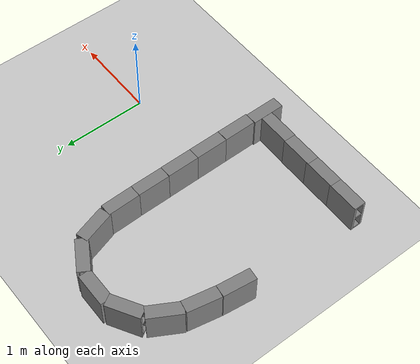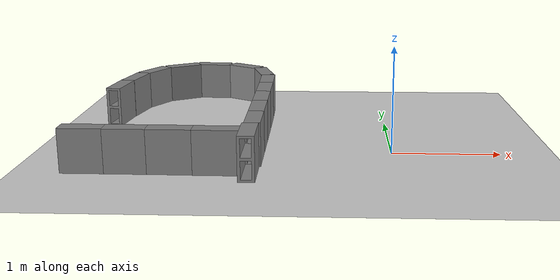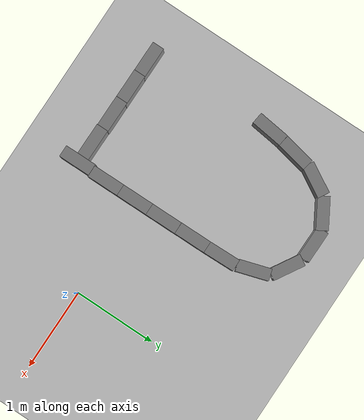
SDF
<sdf version="1.6">
 <world name="default">
  <model name="ground_plane">
   <static>1</static>
   <link name="link">
    <collision name="collision">
     <geometry><plane><normal>0 0 1</normal><size>100 100</size></plane></geometry>
     <surface>
      <contact><collide_bitmask>65535</collide_bitmask></contact>
      <friction><ode><mu>100</mu><mu2>50</mu2></ode></friction>
     </surface>
    </collision>
    <visual name="visual">
     <cast_shadows>0</cast_shadows>
     <geometry><plane><normal>0 0 1</normal><size>100 100</size></plane></geometry>
     <material>
      <script><uri>file://media/materials/scripts/gazebo.material</uri><name>Gazebo/Grey</name></script>
     </material>
    </visual>
   </link>
  </model>
  <model name="cinder_block_wide">
   <link name="link">
    <inertial>
     <pose>0 0 0.071438 0 -0 0</pose>
     <mass>5</mass>
     <inertia>
      <ixx>0.0681466</ixx>
      <ixy>0</ixy>
      <iyy>0.0681466</iyy>
      <ixz>0</ixz>
      <iyz>0</iyz>
      <izz>0.124808</izz>
     </inertia>
    </inertial>
    <visual name="visual">
     <geometry><mesh><uri>model://cinder_block_wide/meshes/cinder_block_wide.dae</uri></mesh></geometry>
    </visual>
    <collision name="top">
     <pose>0 0 0.130175 0 -0 0</pose>
     <geometry><box><size>0.387354 0.387354 0.0254</size></box></geometry>
     <surface>
      <contact><ode><max_vel>0.1</max_vel><min_depth>0.001</min_depth></ode></contact>
      <friction><ode><mu>1</mu><mu2>1</mu2></ode></friction>
     </surface>
    </collision>
    <collision name="bottom">
     <pose>0 0 0.0127 0 -0 0</pose>
     <geometry><box><size>0.387354 0.387354 0.0254</size></box></geometry>
     <surface>
      <contact><ode><max_vel>0.1</max_vel><min_depth>0.001</min_depth></ode></contact>
      <friction><ode><mu>1</mu><mu2>1</mu2></ode></friction>
     </surface>
    </collision>
    <collision name="left">
     <pose>0 -0.183355 0.071438 0 -0 0</pose>
     <geometry><box><size>0.387354 0.020643 0.092075</size></box></geometry>
     <surface>
      <contact><ode><max_vel>0.1</max_vel><min_depth>0.001</min_depth></ode></contact>
      <friction><ode><mu>1</mu><mu2>1</mu2></ode></friction>
     </surface>
    </collision>
    <collision name="right">
     <pose>0 0.183355 0.071438 0 -0 0</pose>
     <geometry><box><size>0.387354 0.020643 0.092075</size></box></geometry>
     <surface>
      <contact><ode><max_vel>0.1</max_vel><min_depth>0.001</min_depth></ode></contact>
      <friction><ode><mu>1</mu><mu2>1</mu2></ode></friction>
     </surface>
    </collision>
    <collision name="middle">
     <pose>0 0 0.071438 0 -0 0</pose>
     <geometry><box><size>0.387354 0.0254 0.092075</size></box></geometry>
     <surface>
      <contact><ode><max_vel>0.1</max_vel><min_depth>0.001</min_depth></ode></contact>
      <friction><ode><mu>1</mu><mu2>1</mu2></ode></friction>
     </surface>
    </collision>
   </link>
   <pose>-1.5034 -0.852041 0.263357 -1.56869 0 -0.003839</pose>
  </model>
  <model name="cinder_block_wide_clone">
   <link name="link">
    <inertial>
     <pose>0 0 0.071438 0 -0 0</pose>
     <mass>5</mass>
     <inertia>
      <ixx>0.0681466</ixx>
      <ixy>0</ixy>
      <iyy>0.0681466</iyy>
      <ixz>0</ixz>
      <iyz>0</iyz>
      <izz>0.124808</izz>
     </inertia>
    </inertial>
    <visual name="visual">
     <geometry><mesh><uri>model://cinder_block_wide/meshes/cinder_block_wide.dae</uri></mesh></geometry>
    </visual>
    <collision name="top">
     <pose>0 0 0.130175 0 -0 0</pose>
     <geometry><box><size>0.387354 0.387354 0.0254</size></box></geometry>
     <surface>
      <contact><ode><max_vel>0.1</max_vel><min_depth>0.001</min_depth></ode></contact>
      <friction><ode><mu>1</mu><mu2>1</mu2></ode></friction>
     </surface>
    </collision>
    <collision name="bottom">
     <pose>0 0 0.0127 0 -0 0</pose>
     <geometry><box><size>0.387354 0.387354 0.0254</size></box></geometry>
     <surface>
      <contact><ode><max_vel>0.1</max_vel><min_depth>0.001</min_depth></ode></contact>
      <friction><ode><mu>1</mu><mu2>1</mu2></ode></friction>
     </surface>
    </collision>
    <collision name="left">
     <pose>0 -0.183355 0.071438 0 -0 0</pose>
     <geometry><box><size>0.387354 0.020643 0.092075</size></box></geometry>
     <surface>
      <contact><ode><max_vel>0.1</max_vel><min_depth>0.001</min_depth></ode></contact>
      <friction><ode><mu>1</mu><mu2>1</mu2></ode></friction>
     </surface>
    </collision>
    <collision name="right">
     <pose>0 0.183355 0.071438 0 -0 0</pose>
     <geometry><box><size>0.387354 0.020643 0.092075</size></box></geometry>
     <surface>
      <contact><ode><max_vel>0.1</max_vel><min_depth>0.001</min_depth></ode></contact>
      <friction><ode><mu>1</mu><mu2>1</mu2></ode></friction>
     </surface>
    </collision>
    <collision name="middle">
     <pose>0 0 0.071438 0 -0 0</pose>
     <geometry><box><size>0.387354 0.0254 0.092075</size></box></geometry>
     <surface>
      <contact><ode><max_vel>0.1</max_vel><min_depth>0.001</min_depth></ode></contact>
      <friction><ode><mu>1</mu><mu2>1</mu2></ode></friction>
     </surface>
    </collision>
   </link>
   <pose>-1.88278 -0.845078 0.263357 -1.56869 0 -0.003839</pose>
  </model>
  <model name="cinder_block_wide_clone_0">
   <link name="link">
    <inertial>
     <pose>0 0 0.071438 0 -0 0</pose>
     <mass>5</mass>
     <inertia>
      <ixx>0.0681466</ixx>
      <ixy>0</ixy>
      <iyy>0.0681466</iyy>
      <ixz>0</ixz>
      <iyz>0</iyz>
      <izz>0.124808</izz>
     </inertia>
    </inertial>
    <visual name="visual">
     <geometry><mesh><uri>model://cinder_block_wide/meshes/cinder_block_wide.dae</uri></mesh></geometry>
    </visual>
    <collision name="top">
     <pose>0 0 0.130175 0 -0 0</pose>
     <geometry><box><size>0.387354 0.387354 0.0254</size></box></geometry>
     <surface>
      <contact><ode><max_vel>0.1</max_vel><min_depth>0.001</min_depth></ode></contact>
      <friction><ode><mu>1</mu><mu2>1</mu2></ode></friction>
     </surface>
    </collision>
    <collision name="bottom">
     <pose>0 0 0.0127 0 -0 0</pose>
     <geometry><box><size>0.387354 0.387354 0.0254</size></box></geometry>
     <surface>
      <contact><ode><max_vel>0.1</max_vel><min_depth>0.001</min_depth></ode></contact>
      <friction><ode><mu>1</mu><mu2>1</mu2></ode></friction>
     </surface>
    </collision>
    <collision name="left">
     <pose>0 -0.183355 0.071438 0 -0 0</pose>
     <geometry><box><size>0.387354 0.020643 0.092075</size></box></geometry>
     <surface>
      <contact><ode><max_vel>0.1</max_vel><min_depth>0.001</min_depth></ode></contact>
      <friction><ode><mu>1</mu><mu2>1</mu2></ode></friction>
     </surface>
    </collision>
    <collision name="right">
     <pose>0 0.183355 0.071438 0 -0 0</pose>
     <geometry><box><size>0.387354 0.020643 0.092075</size></box></geometry>
     <surface>
      <contact><ode><max_vel>0.1</max_vel><min_depth>0.001</min_depth></ode></contact>
      <friction><ode><mu>1</mu><mu2>1</mu2></ode></friction>
     </surface>
    </collision>
    <collision name="middle">
     <pose>0 0 0.071438 0 -0 0</pose>
     <geometry><box><size>0.387354 0.0254 0.092075</size></box></geometry>
     <surface>
      <contact><ode><max_vel>0.1</max_vel><min_depth>0.001</min_depth></ode></contact>
      <friction><ode><mu>1</mu><mu2>1</mu2></ode></friction>
     </surface>
    </collision>
   </link>
   <pose>-2.24071 -0.843014 0.263357 -1.56869 0 -0.003839</pose>
  </model>
  <model name="cinder_block_wide_clone_1">
   <link name="link">
    <inertial>
     <pose>0 0 0.071438 0 -0 0</pose>
     <mass>5</mass>
     <inertia>
      <ixx>0.0681466</ixx>
      <ixy>0</ixy>
      <iyy>0.0681466</iyy>
      <ixz>0</ixz>
      <iyz>0</iyz>
      <izz>0.124808</izz>
     </inertia>
    </inertial>
    <visual name="visual">
     <geometry><mesh><uri>model://cinder_block_wide/meshes/cinder_block_wide.dae</uri></mesh></geometry>
    </visual>
    <collision name="top">
     <pose>0 0 0.130175 0 -0 0</pose>
     <geometry><box><size>0.387354 0.387354 0.0254</size></box></geometry>
     <surface>
      <contact><ode><max_vel>0.1</max_vel><min_depth>0.001</min_depth></ode></contact>
      <friction><ode><mu>1</mu><mu2>1</mu2></ode></friction>
     </surface>
    </collision>
    <collision name="bottom">
     <pose>0 0 0.0127 0 -0 0</pose>
     <geometry><box><size>0.387354 0.387354 0.0254</size></box></geometry>
     <surface>
      <contact><ode><max_vel>0.1</max_vel><min_depth>0.001</min_depth></ode></contact>
      <friction><ode><mu>1</mu><mu2>1</mu2></ode></friction>
     </surface>
    </collision>
    <collision name="left">
     <pose>0 -0.183355 0.071438 0 -0 0</pose>
     <geometry><box><size>0.387354 0.020643 0.092075</size></box></geometry>
     <surface>
      <contact><ode><max_vel>0.1</max_vel><min_depth>0.001</min_depth></ode></contact>
      <friction><ode><mu>1</mu><mu2>1</mu2></ode></friction>
     </surface>
    </collision>
    <collision name="right">
     <pose>0 0.183355 0.071438 0 -0 0</pose>
     <geometry><box><size>0.387354 0.020643 0.092075</size></box></geometry>
     <surface>
      <contact><ode><max_vel>0.1</max_vel><min_depth>0.001</min_depth></ode></contact>
      <friction><ode><mu>1</mu><mu2>1</mu2></ode></friction>
     </surface>
    </collision>
    <collision name="middle">
     <pose>0 0 0.071438 0 -0 0</pose>
     <geometry><box><size>0.387354 0.0254 0.092075</size></box></geometry>
     <surface>
      <contact><ode><max_vel>0.1</max_vel><min_depth>0.001</min_depth></ode></contact>
      <friction><ode><mu>1</mu><mu2>1</mu2></ode></friction>
     </surface>
    </collision>
   </link>
   <pose>-2.61163 -0.840837 0.263357 -1.56869 0 -0.003839</pose>
  </model>
  <model name="cinder_block_wide_clone_6_clone_1_clone_2">
   <link name="link">
    <inertial>
     <pose>0 0 0.071438 0 -0 0</pose>
     <mass>5</mass>
     <inertia>
      <ixx>0.0681466</ixx>
      <ixy>0</ixy>
      <iyy>0.0681466</iyy>
      <ixz>0</ixz>
      <iyz>0</iyz>
      <izz>0.124808</izz>
     </inertia>
    </inertial>
    <visual name="visual">
     <geometry><mesh><uri>model://cinder_block_wide/meshes/cinder_block_wide.dae</uri></mesh></geometry>
    </visual>
    <collision name="top">
     <pose>0 0 0.130175 0 -0 0</pose>
     <geometry><box><size>0.387354 0.387354 0.0254</size></box></geometry>
     <surface>
      <contact><ode><max_vel>0.1</max_vel><min_depth>0.001</min_depth></ode></contact>
      <friction><ode><mu>1</mu><mu2>1</mu2></ode></friction>
     </surface>
    </collision>
    <collision name="bottom">
     <pose>0 0 0.0127 0 -0 0</pose>
     <geometry><box><size>0.387354 0.387354 0.0254</size></box></geometry>
     <surface>
      <contact><ode><max_vel>0.1</max_vel><min_depth>0.001</min_depth></ode></contact>
      <friction><ode><mu>1</mu><mu2>1</mu2></ode></friction>
     </surface>
    </collision>
    <collision name="left">
     <pose>0 -0.183355 0.071438 0 -0 0</pose>
     <geometry><box><size>0.387354 0.020643 0.092075</size></box></geometry>
     <surface>
      <contact><ode><max_vel>0.1</max_vel><min_depth>0.001</min_depth></ode></contact>
      <friction><ode><mu>1</mu><mu2>1</mu2></ode></friction>
     </surface>
    </collision>
    <collision name="right">
     <pose>0 0.183355 0.071438 0 -0 0</pose>
     <geometry><box><size>0.387354 0.020643 0.092075</size></box></geometry>
     <surface>
      <contact><ode><max_vel>0.1</max_vel><min_depth>0.001</min_depth></ode></contact>
      <friction><ode><mu>1</mu><mu2>1</mu2></ode></friction>
     </surface>
    </collision>
    <collision name="middle">
     <pose>0 0 0.071438 0 -0 0</pose>
     <geometry><box><size>0.387354 0.0254 0.092075</size></box></geometry>
     <surface>
      <contact><ode><max_vel>0.1</max_vel><min_depth>0.001</min_depth></ode></contact>
      <friction><ode><mu>1</mu><mu2>1</mu2></ode></friction>
     </surface>
    </collision>
   </link>
   <pose>-2.78719 0.796744 0.263357 -1.57105 0.00209 -1.6971</pose>
  </model>
  <model name="cinder_block_wide_clone_6_clone_1_clone_clone">
   <link name="link">
    <inertial>
     <pose>0 0 0.071438 0 -0 0</pose>
     <mass>5</mass>
     <inertia>
      <ixx>0.0681466</ixx>
      <ixy>0</ixy>
      <iyy>0.0681466</iyy>
      <ixz>0</ixz>
      <iyz>0</iyz>
      <izz>0.124808</izz>
     </inertia>
    </inertial>
    <visual name="visual">
     <geometry><mesh><uri>model://cinder_block_wide/meshes/cinder_block_wide.dae</uri></mesh></geometry>
    </visual>
    <collision name="top">
     <pose>0 0 0.130175 0 -0 0</pose>
     <geometry><box><size>0.387354 0.387354 0.0254</size></box></geometry>
     <surface>
      <contact><ode><max_vel>0.1</max_vel><min_depth>0.001</min_depth></ode></contact>
      <friction><ode><mu>1</mu><mu2>1</mu2></ode></friction>
     </surface>
    </collision>
    <collision name="bottom">
     <pose>0 0 0.0127 0 -0 0</pose>
     <geometry><box><size>0.387354 0.387354 0.0254</size></box></geometry>
     <surface>
      <contact><ode><max_vel>0.1</max_vel><min_depth>0.001</min_depth></ode></contact>
      <friction><ode><mu>1</mu><mu2>1</mu2></ode></friction>
     </surface>
    </collision>
    <collision name="left">
     <pose>0 -0.183355 0.071438 0 -0 0</pose>
     <geometry><box><size>0.387354 0.020643 0.092075</size></box></geometry>
     <surface>
      <contact><ode><max_vel>0.1</max_vel><min_depth>0.001</min_depth></ode></contact>
      <friction><ode><mu>1</mu><mu2>1</mu2></ode></friction>
     </surface>
    </collision>
    <collision name="right">
     <pose>0 0.183355 0.071438 0 -0 0</pose>
     <geometry><box><size>0.387354 0.020643 0.092075</size></box></geometry>
     <surface>
      <contact><ode><max_vel>0.1</max_vel><min_depth>0.001</min_depth></ode></contact>
      <friction><ode><mu>1</mu><mu2>1</mu2></ode></friction>
     </surface>
    </collision>
    <collision name="middle">
     <pose>0 0 0.071438 0 -0 0</pose>
     <geometry><box><size>0.387354 0.0254 0.092075</size></box></geometry>
     <surface>
      <contact><ode><max_vel>0.1</max_vel><min_depth>0.001</min_depth></ode></contact>
      <friction><ode><mu>1</mu><mu2>1</mu2></ode></friction>
     </surface>
    </collision>
   </link>
   <pose>-2.72229 1.18397 0.263357 -1.5712 0.002065 -1.77123</pose>
  </model>
  <model name="cinder_block_wide_clone_6_clone_1_clone_0_clone">
   <link name="link">
    <inertial>
     <pose>0 0 0.071438 0 -0 0</pose>
     <mass>5</mass>
     <inertia>
      <ixx>0.0681466</ixx>
      <ixy>0</ixy>
      <iyy>0.0681466</iyy>
      <ixz>0</ixz>
      <iyz>0</iyz>
      <izz>0.124808</izz>
     </inertia>
    </inertial>
    <visual name="visual">
     <geometry><mesh><uri>model://cinder_block_wide/meshes/cinder_block_wide.dae</uri></mesh></geometry>
    </visual>
    <collision name="top">
     <pose>0 0 0.130175 0 -0 0</pose>
     <geometry><box><size>0.387354 0.387354 0.0254</size></box></geometry>
     <surface>
      <contact><ode><max_vel>0.1</max_vel><min_depth>0.001</min_depth></ode></contact>
      <friction><ode><mu>1</mu><mu2>1</mu2></ode></friction>
     </surface>
    </collision>
    <collision name="bottom">
     <pose>0 0 0.0127 0 -0 0</pose>
     <geometry><box><size>0.387354 0.387354 0.0254</size></box></geometry>
     <surface>
      <contact><ode><max_vel>0.1</max_vel><min_depth>0.001</min_depth></ode></contact>
      <friction><ode><mu>1</mu><mu2>1</mu2></ode></friction>
     </surface>
    </collision>
    <collision name="left">
     <pose>0 -0.183355 0.071438 0 -0 0</pose>
     <geometry><box><size>0.387354 0.020643 0.092075</size></box></geometry>
     <surface>
      <contact><ode><max_vel>0.1</max_vel><min_depth>0.001</min_depth></ode></contact>
      <friction><ode><mu>1</mu><mu2>1</mu2></ode></friction>
     </surface>
    </collision>
    <collision name="right">
     <pose>0 0.183355 0.071438 0 -0 0</pose>
     <geometry><box><size>0.387354 0.020643 0.092075</size></box></geometry>
     <surface>
      <contact><ode><max_vel>0.1</max_vel><min_depth>0.001</min_depth></ode></contact>
      <friction><ode><mu>1</mu><mu2>1</mu2></ode></friction>
     </surface>
    </collision>
    <collision name="middle">
     <pose>0 0 0.071438 0 -0 0</pose>
     <geometry><box><size>0.387354 0.0254 0.092075</size></box></geometry>
     <surface>
      <contact><ode><max_vel>0.1</max_vel><min_depth>0.001</min_depth></ode></contact>
      <friction><ode><mu>1</mu><mu2>1</mu2></ode></friction>
     </surface>
    </collision>
   </link>
   <pose>-2.58887 1.55701 0.263357 -1.57183 0.001834 -2.08968</pose>
  </model>
  <model name="cinder_block_wide_clone_6_clone_1_clone_1_clone_0">
   <link name="link">
    <inertial>
     <pose>0 0 0.071438 0 -0 0</pose>
     <mass>5</mass>
     <inertia>
      <ixx>0.0681466</ixx>
      <ixy>0</ixy>
      <iyy>0.0681466</iyy>
      <ixz>0</ixz>
      <iyz>0</iyz>
      <izz>0.124808</izz>
     </inertia>
    </inertial>
    <visual name="visual">
     <geometry><mesh><uri>model://cinder_block_wide/meshes/cinder_block_wide.dae</uri></mesh></geometry>
    </visual>
    <collision name="top">
     <pose>0 0 0.130175 0 -0 0</pose>
     <geometry><box><size>0.387354 0.387354 0.0254</size></box></geometry>
     <surface>
      <contact><ode><max_vel>0.1</max_vel><min_depth>0.001</min_depth></ode></contact>
      <friction><ode><mu>1</mu><mu2>1</mu2></ode></friction>
     </surface>
    </collision>
    <collision name="bottom">
     <pose>0 0 0.0127 0 -0 0</pose>
     <geometry><box><size>0.387354 0.387354 0.0254</size></box></geometry>
     <surface>
      <contact><ode><max_vel>0.1</max_vel><min_depth>0.001</min_depth></ode></contact>
      <friction><ode><mu>1</mu><mu2>1</mu2></ode></friction>
     </surface>
    </collision>
    <collision name="left">
     <pose>0 -0.183355 0.071438 0 -0 0</pose>
     <geometry><box><size>0.387354 0.020643 0.092075</size></box></geometry>
     <surface>
      <contact><ode><max_vel>0.1</max_vel><min_depth>0.001</min_depth></ode></contact>
      <friction><ode><mu>1</mu><mu2>1</mu2></ode></friction>
     </surface>
    </collision>
    <collision name="right">
     <pose>0 0.183355 0.071438 0 -0 0</pose>
     <geometry><box><size>0.387354 0.020643 0.092075</size></box></geometry>
     <surface>
      <contact><ode><max_vel>0.1</max_vel><min_depth>0.001</min_depth></ode></contact>
      <friction><ode><mu>1</mu><mu2>1</mu2></ode></friction>
     </surface>
    </collision>
    <collision name="middle">
     <pose>0 0 0.071438 0 -0 0</pose>
     <geometry><box><size>0.387354 0.0254 0.092075</size></box></geometry>
     <surface>
      <contact><ode><max_vel>0.1</max_vel><min_depth>0.001</min_depth></ode></contact>
      <friction><ode><mu>1</mu><mu2>1</mu2></ode></friction>
     </surface>
    </collision>
   </link>
   <pose>-2.29641 1.85571 0.263357 -1.57261 0.001075 -2.61103</pose>
  </model>
  <model name="cinder_block_wide_clone_6_clone_1_clone_1_clone_clone_0">
   <link name="link">
    <inertial>
     <pose>0 0 0.071438 0 -0 0</pose>
     <mass>5</mass>
     <inertia>
      <ixx>0.0681466</ixx>
      <ixy>0</ixy>
      <iyy>0.0681466</iyy>
      <ixz>0</ixz>
      <iyz>0</iyz>
      <izz>0.124808</izz>
     </inertia>
    </inertial>
    <visual name="visual">
     <geometry><mesh><uri>model://cinder_block_wide/meshes/cinder_block_wide.dae</uri></mesh></geometry>
    </visual>
    <collision name="top">
     <pose>0 0 0.130175 0 -0 0</pose>
     <geometry><box><size>0.387354 0.387354 0.0254</size></box></geometry>
     <surface>
      <contact><ode><max_vel>0.1</max_vel><min_depth>0.001</min_depth></ode></contact>
      <friction><ode><mu>1</mu><mu2>1</mu2></ode></friction>
     </surface>
    </collision>
    <collision name="bottom">
     <pose>0 0 0.0127 0 -0 0</pose>
     <geometry><box><size>0.387354 0.387354 0.0254</size></box></geometry>
     <surface>
      <contact><ode><max_vel>0.1</max_vel><min_depth>0.001</min_depth></ode></contact>
      <friction><ode><mu>1</mu><mu2>1</mu2></ode></friction>
     </surface>
    </collision>
    <collision name="left">
     <pose>0 -0.183355 0.071438 0 -0 0</pose>
     <geometry><box><size>0.387354 0.020643 0.092075</size></box></geometry>
     <surface>
      <contact><ode><max_vel>0.1</max_vel><min_depth>0.001</min_depth></ode></contact>
      <friction><ode><mu>1</mu><mu2>1</mu2></ode></friction>
     </surface>
    </collision>
    <collision name="right">
     <pose>0 0.183355 0.071438 0 -0 0</pose>
     <geometry><box><size>0.387354 0.020643 0.092075</size></box></geometry>
     <surface>
      <contact><ode><max_vel>0.1</max_vel><min_depth>0.001</min_depth></ode></contact>
      <friction><ode><mu>1</mu><mu2>1</mu2></ode></friction>
     </surface>
    </collision>
    <collision name="middle">
     <pose>0 0 0.071438 0 -0 0</pose>
     <geometry><box><size>0.387354 0.0254 0.092075</size></box></geometry>
     <surface>
      <contact><ode><max_vel>0.1</max_vel><min_depth>0.001</min_depth></ode></contact>
      <friction><ode><mu>1</mu><mu2>1</mu2></ode></friction>
     </surface>
    </collision>
   </link>
   <pose>-1.91162 1.96772 0.263357 -1.5729 -3e-06 3.13368</pose>
  </model>
  <model name="cinder_block_wide_clone_6_clone_1_clone_1_clone_clone_clone_1">
   <link name="link">
    <inertial>
     <pose>0 0 0.071438 0 -0 0</pose>
     <mass>5</mass>
     <inertia>
      <ixx>0.0681466</ixx>
      <ixy>0</ixy>
      <iyy>0.0681466</iyy>
      <ixz>0</ixz>
      <iyz>0</iyz>
      <izz>0.124808</izz>
     </inertia>
    </inertial>
    <visual name="visual">
     <geometry><mesh><uri>model://cinder_block_wide/meshes/cinder_block_wide.dae</uri></mesh></geometry>
    </visual>
    <collision name="top">
     <pose>0 0 0.130175 0 -0 0</pose>
     <geometry><box><size>0.387354 0.387354 0.0254</size></box></geometry>
     <surface>
      <contact><ode><max_vel>0.1</max_vel><min_depth>0.001</min_depth></ode></contact>
      <friction><ode><mu>1</mu><mu2>1</mu2></ode></friction>
     </surface>
    </collision>
    <collision name="bottom">
     <pose>0 0 0.0127 0 -0 0</pose>
     <geometry><box><size>0.387354 0.387354 0.0254</size></box></geometry>
     <surface>
      <contact><ode><max_vel>0.1</max_vel><min_depth>0.001</min_depth></ode></contact>
      <friction><ode><mu>1</mu><mu2>1</mu2></ode></friction>
     </surface>
    </collision>
    <collision name="left">
     <pose>0 -0.183355 0.071438 0 -0 0</pose>
     <geometry><box><size>0.387354 0.020643 0.092075</size></box></geometry>
     <surface>
      <contact><ode><max_vel>0.1</max_vel><min_depth>0.001</min_depth></ode></contact>
      <friction><ode><mu>1</mu><mu2>1</mu2></ode></friction>
     </surface>
    </collision>
    <collision name="right">
     <pose>0 0.183355 0.071438 0 -0 0</pose>
     <geometry><box><size>0.387354 0.020643 0.092075</size></box></geometry>
     <surface>
      <contact><ode><max_vel>0.1</max_vel><min_depth>0.001</min_depth></ode></contact>
      <friction><ode><mu>1</mu><mu2>1</mu2></ode></friction>
     </surface>
    </collision>
    <collision name="middle">
     <pose>0 0 0.071438 0 -0 0</pose>
     <geometry><box><size>0.387354 0.0254 0.092075</size></box></geometry>
     <surface>
      <contact><ode><max_vel>0.1</max_vel><min_depth>0.001</min_depth></ode></contact>
      <friction><ode><mu>1</mu><mu2>1</mu2></ode></friction>
     </surface>
    </collision>
   </link>
   <pose>-1.49863 1.85316 0.263357 -1.57261 -0.001068 2.60293</pose>
  </model>
  <model name="cinder_block_wide_clone_6_clone_1_clone_1_clone_clone_clone_clone">
   <link name="link">
    <inertial>
     <pose>0 0 0.071438 0 -0 0</pose>
     <mass>5</mass>
     <inertia>
      <ixx>0.0681466</ixx>
      <ixy>0</ixy>
      <iyy>0.0681466</iyy>
      <ixz>0</ixz>
      <iyz>0</iyz>
      <izz>0.124808</izz>
     </inertia>
    </inertial>
    <visual name="visual">
     <geometry><mesh><uri>model://cinder_block_wide/meshes/cinder_block_wide.dae</uri></mesh></geometry>
    </visual>
    <collision name="top">
     <pose>0 0 0.130175 0 -0 0</pose>
     <geometry><box><size>0.387354 0.387354 0.0254</size></box></geometry>
     <surface>
      <contact><ode><max_vel>0.1</max_vel><min_depth>0.001</min_depth></ode></contact>
      <friction><ode><mu>1</mu><mu2>1</mu2></ode></friction>
     </surface>
    </collision>
    <collision name="bottom">
     <pose>0 0 0.0127 0 -0 0</pose>
     <geometry><box><size>0.387354 0.387354 0.0254</size></box></geometry>
     <surface>
      <contact><ode><max_vel>0.1</max_vel><min_depth>0.001</min_depth></ode></contact>
      <friction><ode><mu>1</mu><mu2>1</mu2></ode></friction>
     </surface>
    </collision>
    <collision name="left">
     <pose>0 -0.183355 0.071438 0 -0 0</pose>
     <geometry><box><size>0.387354 0.020643 0.092075</size></box></geometry>
     <surface>
      <contact><ode><max_vel>0.1</max_vel><min_depth>0.001</min_depth></ode></contact>
      <friction><ode><mu>1</mu><mu2>1</mu2></ode></friction>
     </surface>
    </collision>
    <collision name="right">
     <pose>0 0.183355 0.071438 0 -0 0</pose>
     <geometry><box><size>0.387354 0.020643 0.092075</size></box></geometry>
     <surface>
      <contact><ode><max_vel>0.1</max_vel><min_depth>0.001</min_depth></ode></contact>
      <friction><ode><mu>1</mu><mu2>1</mu2></ode></friction>
     </surface>
    </collision>
    <collision name="middle">
     <pose>0 0 0.071438 0 -0 0</pose>
     <geometry><box><size>0.387354 0.0254 0.092075</size></box></geometry>
     <surface>
      <contact><ode><max_vel>0.1</max_vel><min_depth>0.001</min_depth></ode></contact>
      <friction><ode><mu>1</mu><mu2>1</mu2></ode></friction>
     </surface>
    </collision>
   </link>
   <pose>-1.23943 1.522 0.263357 -1.57143 -0.002008 1.86807</pose>
  </model>
  <model name="cinder_block_wide_clone_6_clone_1_clone_1_clone_clone_clone_0_clone">
   <link name="link">
    <inertial>
     <pose>0 0 0.071438 0 -0 0</pose>
     <mass>5</mass>
     <inertia>
      <ixx>0.0681466</ixx>
      <ixy>0</ixy>
      <iyy>0.0681466</iyy>
      <ixz>0</ixz>
      <iyz>0</iyz>
      <izz>0.124808</izz>
     </inertia>
    </inertial>
    <visual name="visual">
     <geometry><mesh><uri>model://cinder_block_wide/meshes/cinder_block_wide.dae</uri></mesh></geometry>
    </visual>
    <collision name="top">
     <pose>0 0 0.130175 0 -0 0</pose>
     <geometry><box><size>0.387354 0.387354 0.0254</size></box></geometry>
     <surface>
      <contact><ode><max_vel>0.1</max_vel><min_depth>0.001</min_depth></ode></contact>
      <friction><ode><mu>1</mu><mu2>1</mu2></ode></friction>
     </surface>
    </collision>
    <collision name="bottom">
     <pose>0 0 0.0127 0 -0 0</pose>
     <geometry><box><size>0.387354 0.387354 0.0254</size></box></geometry>
     <surface>
      <contact><ode><max_vel>0.1</max_vel><min_depth>0.001</min_depth></ode></contact>
      <friction><ode><mu>1</mu><mu2>1</mu2></ode></friction>
     </surface>
    </collision>
    <collision name="left">
     <pose>0 -0.183355 0.071438 0 -0 0</pose>
     <geometry><box><size>0.387354 0.020643 0.092075</size></box></geometry>
     <surface>
      <contact><ode><max_vel>0.1</max_vel><min_depth>0.001</min_depth></ode></contact>
      <friction><ode><mu>1</mu><mu2>1</mu2></ode></friction>
     </surface>
    </collision>
    <collision name="right">
     <pose>0 0.183355 0.071438 0 -0 0</pose>
     <geometry><box><size>0.387354 0.020643 0.092075</size></box></geometry>
     <surface>
      <contact><ode><max_vel>0.1</max_vel><min_depth>0.001</min_depth></ode></contact>
      <friction><ode><mu>1</mu><mu2>1</mu2></ode></friction>
     </surface>
    </collision>
    <collision name="middle">
     <pose>0 0 0.071438 0 -0 0</pose>
     <geometry><box><size>0.387354 0.0254 0.092075</size></box></geometry>
     <surface>
      <contact><ode><max_vel>0.1</max_vel><min_depth>0.001</min_depth></ode></contact>
      <friction><ode><mu>1</mu><mu2>1</mu2></ode></friction>
     </surface>
    </collision>
   </link>
   <pose>-1.16545 1.1201 0.263357 -1.57086 -0.002104 1.59329</pose>
  </model>
  <model name="cinder_block_wide_clone_6_clone_2_clone_0">
   <link name="link">
    <inertial>
     <pose>0 0 0.071438 0 -0 0</pose>
     <mass>5</mass>
     <inertia>
      <ixx>0.0681466</ixx>
      <ixy>0</ixy>
      <iyy>0.0681466</iyy>
      <ixz>0</ixz>
      <iyz>0</iyz>
      <izz>0.124808</izz>
     </inertia>
    </inertial>
    <visual name="visual">
     <geometry><mesh><uri>model://cinder_block_wide/meshes/cinder_block_wide.dae</uri></mesh></geometry>
    </visual>
    <collision name="top">
     <pose>0 0 0.130175 0 -0 0</pose>
     <geometry><box><size>0.387354 0.387354 0.0254</size></box></geometry>
     <surface>
      <contact><ode><max_vel>0.1</max_vel><min_depth>0.001</min_depth></ode></contact>
      <friction><ode><mu>1</mu><mu2>1</mu2></ode></friction>
     </surface>
    </collision>
    <collision name="bottom">
     <pose>0 0 0.0127 0 -0 0</pose>
     <geometry><box><size>0.387354 0.387354 0.0254</size></box></geometry>
     <surface>
      <contact><ode><max_vel>0.1</max_vel><min_depth>0.001</min_depth></ode></contact>
      <friction><ode><mu>1</mu><mu2>1</mu2></ode></friction>
     </surface>
    </collision>
    <collision name="left">
     <pose>0 -0.183355 0.071438 0 -0 0</pose>
     <geometry><box><size>0.387354 0.020643 0.092075</size></box></geometry>
     <surface>
      <contact><ode><max_vel>0.1</max_vel><min_depth>0.001</min_depth></ode></contact>
      <friction><ode><mu>1</mu><mu2>1</mu2></ode></friction>
     </surface>
    </collision>
    <collision name="right">
     <pose>0 0.183355 0.071438 0 -0 0</pose>
     <geometry><box><size>0.387354 0.020643 0.092075</size></box></geometry>
     <surface>
      <contact><ode><max_vel>0.1</max_vel><min_depth>0.001</min_depth></ode></contact>
      <friction><ode><mu>1</mu><mu2>1</mu2></ode></friction>
     </surface>
    </collision>
    <collision name="middle">
     <pose>0 0 0.071438 0 -0 0</pose>
     <geometry><box><size>0.387354 0.0254 0.092075</size></box></geometry>
     <surface>
      <contact><ode><max_vel>0.1</max_vel><min_depth>0.001</min_depth></ode></contact>
      <friction><ode><mu>1</mu><mu2>1</mu2></ode></friction>
     </surface>
    </collision>
   </link>
   <pose>-1.30302 0.736682 0.263357 -1.57078 0.002106 -1.56659</pose>
  </model>
  <model name="cinder_block_wide_clone_6_clone_2_clone_0_clone">
   <link name="link">
    <inertial>
     <pose>0 0 0.071438 0 -0 0</pose>
     <mass>5</mass>
     <inertia>
      <ixx>0.0681466</ixx>
      <ixy>0</ixy>
      <iyy>0.0681466</iyy>
      <ixz>0</ixz>
      <iyz>0</iyz>
      <izz>0.124808</izz>
     </inertia>
    </inertial>
    <visual name="visual">
     <geometry><mesh><uri>model://cinder_block_wide/meshes/cinder_block_wide.dae</uri></mesh></geometry>
    </visual>
    <collision name="top">
     <pose>0 0 0.130175 0 -0 0</pose>
     <geometry><box><size>0.387354 0.387354 0.0254</size></box></geometry>
     <surface>
      <contact><ode><max_vel>0.1</max_vel><min_depth>0.001</min_depth></ode></contact>
      <friction><ode><mu>1</mu><mu2>1</mu2></ode></friction>
     </surface>
    </collision>
    <collision name="bottom">
     <pose>0 0 0.0127 0 -0 0</pose>
     <geometry><box><size>0.387354 0.387354 0.0254</size></box></geometry>
     <surface>
      <contact><ode><max_vel>0.1</max_vel><min_depth>0.001</min_depth></ode></contact>
      <friction><ode><mu>1</mu><mu2>1</mu2></ode></friction>
     </surface>
    </collision>
    <collision name="left">
     <pose>0 -0.183355 0.071438 0 -0 0</pose>
     <geometry><box><size>0.387354 0.020643 0.092075</size></box></geometry>
     <surface>
      <contact><ode><max_vel>0.1</max_vel><min_depth>0.001</min_depth></ode></contact>
      <friction><ode><mu>1</mu><mu2>1</mu2></ode></friction>
     </surface>
    </collision>
    <collision name="right">
     <pose>0 0.183355 0.071438 0 -0 0</pose>
     <geometry><box><size>0.387354 0.020643 0.092075</size></box></geometry>
     <surface>
      <contact><ode><max_vel>0.1</max_vel><min_depth>0.001</min_depth></ode></contact>
      <friction><ode><mu>1</mu><mu2>1</mu2></ode></friction>
     </surface>
    </collision>
    <collision name="middle">
     <pose>0 0 0.071438 0 -0 0</pose>
     <geometry><box><size>0.387354 0.0254 0.092075</size></box></geometry>
     <surface>
      <contact><ode><max_vel>0.1</max_vel><min_depth>0.001</min_depth></ode></contact>
      <friction><ode><mu>1</mu><mu2>1</mu2></ode></friction>
     </surface>
    </collision>
   </link>
   <pose>-1.30022 0.348747 0.263357 -1.57078 0.002106 -1.56659</pose>
  </model>
  <model name="cinder_block_wide_clone_6_clone_2_clone_0_clone_0">
   <link name="link">
    <inertial>
     <pose>0 0 0.071438 0 -0 0</pose>
     <mass>5</mass>
     <inertia>
      <ixx>0.0681466</ixx>
      <ixy>0</ixy>
      <iyy>0.0681466</iyy>
      <ixz>0</ixz>
      <iyz>0</iyz>
      <izz>0.124808</izz>
     </inertia>
    </inertial>
    <visual name="visual">
     <geometry><mesh><uri>model://cinder_block_wide/meshes/cinder_block_wide.dae</uri></mesh></geometry>
    </visual>
    <collision name="top">
     <pose>0 0 0.130175 0 -0 0</pose>
     <geometry><box><size>0.387354 0.387354 0.0254</size></box></geometry>
     <surface>
      <contact><ode><max_vel>0.1</max_vel><min_depth>0.001</min_depth></ode></contact>
      <friction><ode><mu>1</mu><mu2>1</mu2></ode></friction>
     </surface>
    </collision>
    <collision name="bottom">
     <pose>0 0 0.0127 0 -0 0</pose>
     <geometry><box><size>0.387354 0.387354 0.0254</size></box></geometry>
     <surface>
      <contact><ode><max_vel>0.1</max_vel><min_depth>0.001</min_depth></ode></contact>
      <friction><ode><mu>1</mu><mu2>1</mu2></ode></friction>
     </surface>
    </collision>
    <collision name="left">
     <pose>0 -0.183355 0.071438 0 -0 0</pose>
     <geometry><box><size>0.387354 0.020643 0.092075</size></box></geometry>
     <surface>
      <contact><ode><max_vel>0.1</max_vel><min_depth>0.001</min_depth></ode></contact>
      <friction><ode><mu>1</mu><mu2>1</mu2></ode></friction>
     </surface>
    </collision>
    <collision name="right">
     <pose>0 0.183355 0.071438 0 -0 0</pose>
     <geometry><box><size>0.387354 0.020643 0.092075</size></box></geometry>
     <surface>
      <contact><ode><max_vel>0.1</max_vel><min_depth>0.001</min_depth></ode></contact>
      <friction><ode><mu>1</mu><mu2>1</mu2></ode></friction>
     </surface>
    </collision>
    <collision name="middle">
     <pose>0 0 0.071438 0 -0 0</pose>
     <geometry><box><size>0.387354 0.0254 0.092075</size></box></geometry>
     <surface>
      <contact><ode><max_vel>0.1</max_vel><min_depth>0.001</min_depth></ode></contact>
      <friction><ode><mu>1</mu><mu2>1</mu2></ode></friction>
     </surface>
    </collision>
   </link>
   <pose>-1.29861 -0.034818 0.263357 -1.57078 0.002106 -1.56659</pose>
  </model>
  <model name="cinder_block_wide_clone_6_clone_2_clone_0_clone_1">
   <link name="link">
    <inertial>
     <pose>0 0 0.071438 0 -0 0</pose>
     <mass>5</mass>
     <inertia>
      <ixx>0.0681466</ixx>
      <ixy>0</ixy>
      <iyy>0.0681466</iyy>
      <ixz>0</ixz>
      <iyz>0</iyz>
      <izz>0.124808</izz>
     </inertia>
    </inertial>
    <visual name="visual">
     <geometry><mesh><uri>model://cinder_block_wide/meshes/cinder_block_wide.dae</uri></mesh></geometry>
    </visual>
    <collision name="top">
     <pose>0 0 0.130175 0 -0 0</pose>
     <geometry><box><size>0.387354 0.387354 0.0254</size></box></geometry>
     <surface>
      <contact><ode><max_vel>0.1</max_vel><min_depth>0.001</min_depth></ode></contact>
      <friction><ode><mu>1</mu><mu2>1</mu2></ode></friction>
     </surface>
    </collision>
    <collision name="bottom">
     <pose>0 0 0.0127 0 -0 0</pose>
     <geometry><box><size>0.387354 0.387354 0.0254</size></box></geometry>
     <surface>
      <contact><ode><max_vel>0.1</max_vel><min_depth>0.001</min_depth></ode></contact>
      <friction><ode><mu>1</mu><mu2>1</mu2></ode></friction>
     </surface>
    </collision>
    <collision name="left">
     <pose>0 -0.183355 0.071438 0 -0 0</pose>
     <geometry><box><size>0.387354 0.020643 0.092075</size></box></geometry>
     <surface>
      <contact><ode><max_vel>0.1</max_vel><min_depth>0.001</min_depth></ode></contact>
      <friction><ode><mu>1</mu><mu2>1</mu2></ode></friction>
     </surface>
    </collision>
    <collision name="right">
     <pose>0 0.183355 0.071438 0 -0 0</pose>
     <geometry><box><size>0.387354 0.020643 0.092075</size></box></geometry>
     <surface>
      <contact><ode><max_vel>0.1</max_vel><min_depth>0.001</min_depth></ode></contact>
      <friction><ode><mu>1</mu><mu2>1</mu2></ode></friction>
     </surface>
    </collision>
    <collision name="middle">
     <pose>0 0 0.071438 0 -0 0</pose>
     <geometry><box><size>0.387354 0.0254 0.092075</size></box></geometry>
     <surface>
      <contact><ode><max_vel>0.1</max_vel><min_depth>0.001</min_depth></ode></contact>
      <friction><ode><mu>1</mu><mu2>1</mu2></ode></friction>
     </surface>
    </collision>
   </link>
   <pose>-1.29699 -0.420112 0.263357 -1.57078 0.002106 -1.56659</pose>
  </model>
  <model name="cinder_block_wide_clone_6_clone_2_clone_0_clone_1_clone">
   <link name="link">
    <inertial>
     <pose>0 0 0.071438 0 -0 0</pose>
     <mass>5</mass>
     <inertia>
      <ixx>0.0681466</ixx>
      <ixy>0</ixy>
      <iyy>0.0681466</iyy>
      <ixz>0</ixz>
      <iyz>0</iyz>
      <izz>0.124808</izz>
     </inertia>
    </inertial>
    <visual name="visual">
     <geometry><mesh><uri>model://cinder_block_wide/meshes/cinder_block_wide.dae</uri></mesh></geometry>
    </visual>
    <collision name="top">
     <pose>0 0 0.130175 0 -0 0</pose>
     <geometry><box><size>0.387354 0.387354 0.0254</size></box></geometry>
     <surface>
      <contact><ode><max_vel>0.1</max_vel><min_depth>0.001</min_depth></ode></contact>
      <friction><ode><mu>1</mu><mu2>1</mu2></ode></friction>
     </surface>
    </collision>
    <collision name="bottom">
     <pose>0 0 0.0127 0 -0 0</pose>
     <geometry><box><size>0.387354 0.387354 0.0254</size></box></geometry>
     <surface>
      <contact><ode><max_vel>0.1</max_vel><min_depth>0.001</min_depth></ode></contact>
      <friction><ode><mu>1</mu><mu2>1</mu2></ode></friction>
     </surface>
    </collision>
    <collision name="left">
     <pose>0 -0.183355 0.071438 0 -0 0</pose>
     <geometry><box><size>0.387354 0.020643 0.092075</size></box></geometry>
     <surface>
      <contact><ode><max_vel>0.1</max_vel><min_depth>0.001</min_depth></ode></contact>
      <friction><ode><mu>1</mu><mu2>1</mu2></ode></friction>
     </surface>
    </collision>
    <collision name="right">
     <pose>0 0.183355 0.071438 0 -0 0</pose>
     <geometry><box><size>0.387354 0.020643 0.092075</size></box></geometry>
     <surface>
      <contact><ode><max_vel>0.1</max_vel><min_depth>0.001</min_depth></ode></contact>
      <friction><ode><mu>1</mu><mu2>1</mu2></ode></friction>
     </surface>
    </collision>
    <collision name="middle">
     <pose>0 0 0.071438 0 -0 0</pose>
     <geometry><box><size>0.387354 0.0254 0.092075</size></box></geometry>
     <surface>
      <contact><ode><max_vel>0.1</max_vel><min_depth>0.001</min_depth></ode></contact>
      <friction><ode><mu>1</mu><mu2>1</mu2></ode></friction>
     </surface>
    </collision>
   </link>
   <pose>-1.3091 -0.808943 0.263357 -1.57078 0.002106 -1.56659</pose>
  </model>
 </world>
</sdf>
